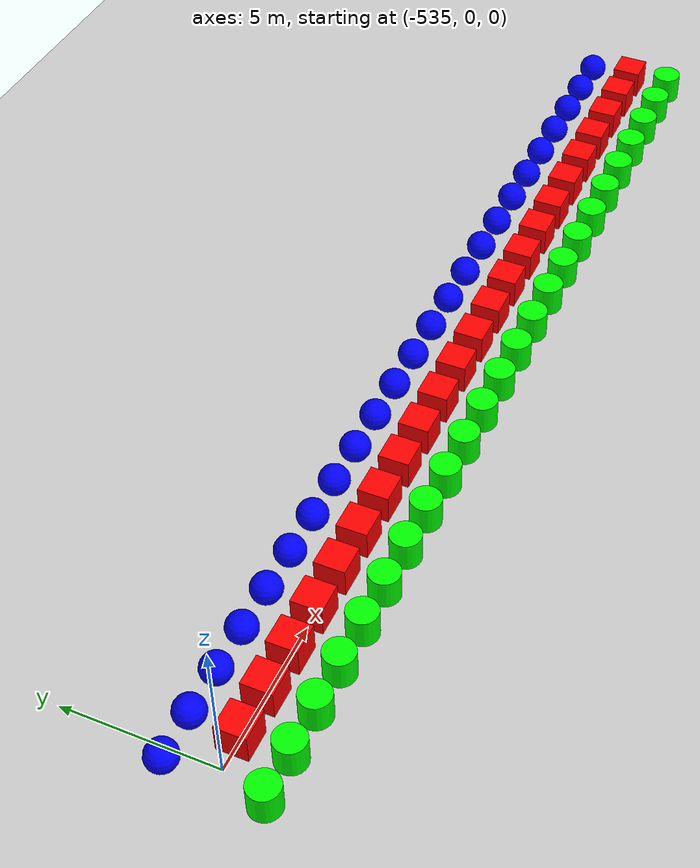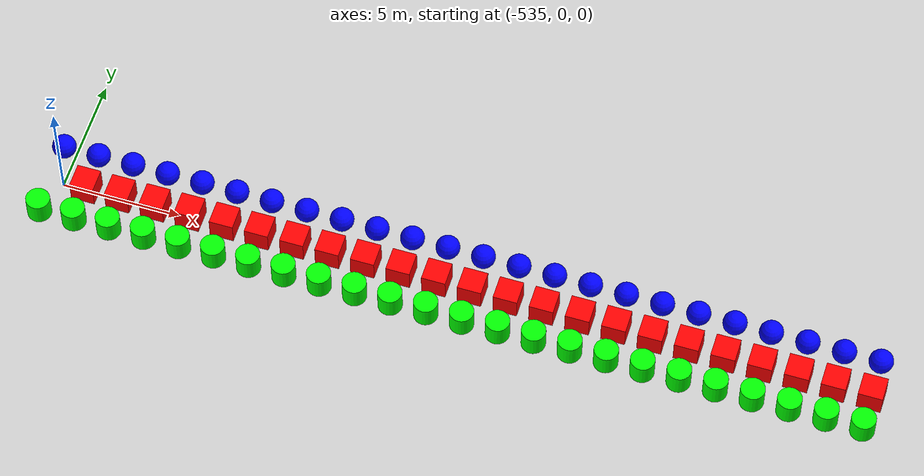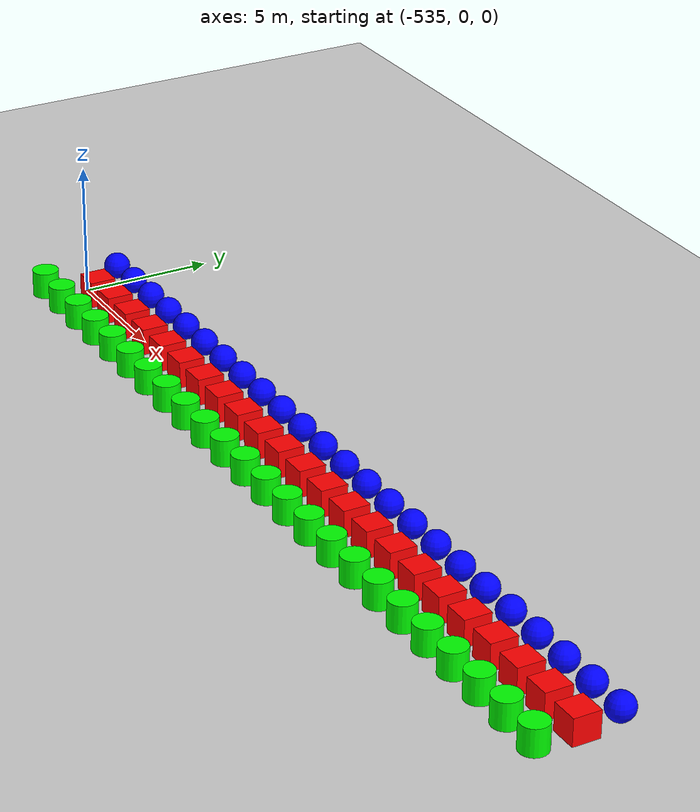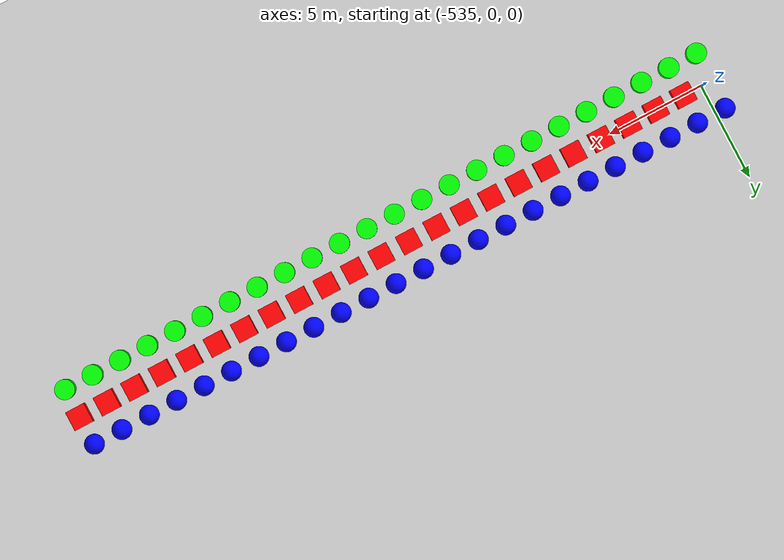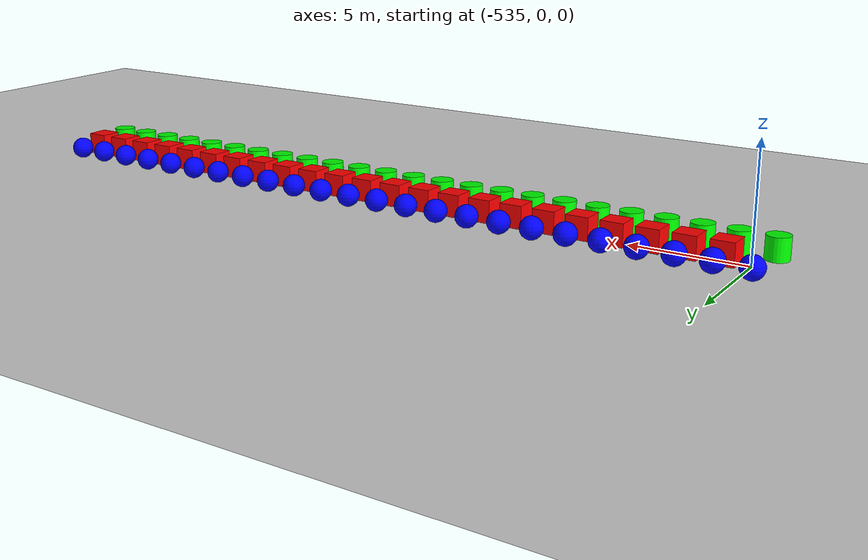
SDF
<sdf version="1.6">
 <world name="shapes">
  <model name="ground_plane">
   <static>true</static>
   <link name="link">
    <collision name="collision">
     <geometry><plane><normal>0 0 1</normal><size>100 100</size></plane></geometry>
    </collision>
    <visual name="visual">
     <geometry><plane><normal>0 0 1</normal><size>100 100</size></plane></geometry>
     <material>
      <ambient>0.8 0.8 0.8 1</ambient>
      <diffuse>0.8 0.8 0.8 1</diffuse>
      <specular>0.8 0.8 0.8 1</specular>
     </material>
    </visual>
   </link>
  </model>
  <model name="cylinder_143">
   <pose>-535.5 -1.5 0.5 0 0 0</pose>
   <link name="cylinder_link">
    <inertial>
     <inertia><ixx>2</ixx><ixy>0</ixy><ixz>0</ixz><iyy>2</iyy><iyz>0</iyz><izz>2</izz></inertia>
     <mass>2.0</mass>
    </inertial>
    <collision name="cylinder_collision">
     <geometry><cylinder><radius>0.5</radius><length>1.0</length></cylinder></geometry>
    </collision>
    <visual name="cylinder_visual">
     <geometry><cylinder><radius>0.5</radius><length>1.0</length></cylinder></geometry>
     <material><ambient>0 1 0 1</ambient><diffuse>0 1 0 1</diffuse><specular>0 1 0 1</specular></material>
    </visual>
   </link>
  </model>
  <model name="sphere_143">
   <pose>-535.5 1.5 0.5 0 0 0</pose>
   <link name="sphere_link">
    <inertial>
     <inertia><ixx>3</ixx><ixy>0</ixy><ixz>0</ixz><iyy>3</iyy><iyz>0</iyz><izz>3</izz></inertia>
     <mass>3.0</mass>
    </inertial>
    <collision name="sphere_collision"><geometry><sphere><radius>0.5</radius></sphere></geometry></collision>
    <visual name="sphere_visual">
     <geometry><sphere><radius>0.5</radius></sphere></geometry>
     <material><ambient>0 0 1 1</ambient><diffuse>0 0 1 1</diffuse><specular>0 0 1 1</specular></material>
    </visual>
   </link>
  </model>
  <model name="box_144">
   <pose>-534.0 0 0.5 0 0 0</pose>
   <link name="box_link">
    <inertial>
     <inertia><ixx>1</ixx><ixy>0</ixy><ixz>0</ixz><iyy>1</iyy><iyz>0</iyz><izz>1</izz></inertia>
     <mass>1.0</mass>
    </inertial>
    <collision name="box_collision"><geometry><box><size>1 1 1</size></box></geometry></collision>
    <visual name="box_visual">
     <geometry><box><size>1 1 1</size></box></geometry>
     <material><ambient>1 0 0 1</ambient><diffuse>1 0 0 1</diffuse><specular>1 0 0 1</specular></material>
    </visual>
   </link>
  </model>
  <model name="cylinder_144">
   <pose>-534.0 -1.5 0.5 0 0 0</pose>
   <link name="cylinder_link">
    <inertial>
     <inertia><ixx>2</ixx><ixy>0</ixy><ixz>0</ixz><iyy>2</iyy><iyz>0</iyz><izz>2</izz></inertia>
     <mass>2.0</mass>
    </inertial>
    <collision name="cylinder_collision">
     <geometry><cylinder><radius>0.5</radius><length>1.0</length></cylinder></geometry>
    </collision>
    <visual name="cylinder_visual">
     <geometry><cylinder><radius>0.5</radius><length>1.0</length></cylinder></geometry>
     <material><ambient>0 1 0 1</ambient><diffuse>0 1 0 1</diffuse><specular>0 1 0 1</specular></material>
    </visual>
   </link>
  </model>
  <model name="sphere_144">
   <pose>-534.0 1.5 0.5 0 0 0</pose>
   <link name="sphere_link">
    <inertial>
     <inertia><ixx>3</ixx><ixy>0</ixy><ixz>0</ixz><iyy>3</iyy><iyz>0</iyz><izz>3</izz></inertia>
     <mass>3.0</mass>
    </inertial>
    <collision name="sphere_collision"><geometry><sphere><radius>0.5</radius></sphere></geometry></collision>
    <visual name="sphere_visual">
     <geometry><sphere><radius>0.5</radius></sphere></geometry>
     <material><ambient>0 0 1 1</ambient><diffuse>0 0 1 1</diffuse><specular>0 0 1 1</specular></material>
    </visual>
   </link>
  </model>
  <model name="box_145">
   <pose>-532.5 0 0.5 0 0 0</pose>
   <link name="box_link">
    <inertial>
     <inertia><ixx>1</ixx><ixy>0</ixy><ixz>0</ixz><iyy>1</iyy><iyz>0</iyz><izz>1</izz></inertia>
     <mass>1.0</mass>
    </inertial>
    <collision name="box_collision"><geometry><box><size>1 1 1</size></box></geometry></collision>
    <visual name="box_visual">
     <geometry><box><size>1 1 1</size></box></geometry>
     <material><ambient>1 0 0 1</ambient><diffuse>1 0 0 1</diffuse><specular>1 0 0 1</specular></material>
    </visual>
   </link>
  </model>
  <model name="cylinder_145">
   <pose>-532.5 -1.5 0.5 0 0 0</pose>
   <link name="cylinder_link">
    <inertial>
     <inertia><ixx>2</ixx><ixy>0</ixy><ixz>0</ixz><iyy>2</iyy><iyz>0</iyz><izz>2</izz></inertia>
     <mass>2.0</mass>
    </inertial>
    <collision name="cylinder_collision">
     <geometry><cylinder><radius>0.5</radius><length>1.0</length></cylinder></geometry>
    </collision>
    <visual name="cylinder_visual">
     <geometry><cylinder><radius>0.5</radius><length>1.0</length></cylinder></geometry>
     <material><ambient>0 1 0 1</ambient><diffuse>0 1 0 1</diffuse><specular>0 1 0 1</specular></material>
    </visual>
   </link>
  </model>
  <model name="sphere_145">
   <pose>-532.5 1.5 0.5 0 0 0</pose>
   <link name="sphere_link">
    <inertial>
     <inertia><ixx>3</ixx><ixy>0</ixy><ixz>0</ixz><iyy>3</iyy><iyz>0</iyz><izz>3</izz></inertia>
     <mass>3.0</mass>
    </inertial>
    <collision name="sphere_collision"><geometry><sphere><radius>0.5</radius></sphere></geometry></collision>
    <visual name="sphere_visual">
     <geometry><sphere><radius>0.5</radius></sphere></geometry>
     <material><ambient>0 0 1 1</ambient><diffuse>0 0 1 1</diffuse><specular>0 0 1 1</specular></material>
    </visual>
   </link>
  </model>
  <model name="box_146">
   <pose>-531.0 0 0.5 0 0 0</pose>
   <link name="box_link">
    <inertial>
     <inertia><ixx>1</ixx><ixy>0</ixy><ixz>0</ixz><iyy>1</iyy><iyz>0</iyz><izz>1</izz></inertia>
     <mass>1.0</mass>
    </inertial>
    <collision name="box_collision"><geometry><box><size>1 1 1</size></box></geometry></collision>
    <visual name="box_visual">
     <geometry><box><size>1 1 1</size></box></geometry>
     <material><ambient>1 0 0 1</ambient><diffuse>1 0 0 1</diffuse><specular>1 0 0 1</specular></material>
    </visual>
   </link>
  </model>
  <model name="cylinder_146">
   <pose>-531.0 -1.5 0.5 0 0 0</pose>
   <link name="cylinder_link">
    <inertial>
     <inertia><ixx>2</ixx><ixy>0</ixy><ixz>0</ixz><iyy>2</iyy><iyz>0</iyz><izz>2</izz></inertia>
     <mass>2.0</mass>
    </inertial>
    <collision name="cylinder_collision">
     <geometry><cylinder><radius>0.5</radius><length>1.0</length></cylinder></geometry>
    </collision>
    <visual name="cylinder_visual">
     <geometry><cylinder><radius>0.5</radius><length>1.0</length></cylinder></geometry>
     <material><ambient>0 1 0 1</ambient><diffuse>0 1 0 1</diffuse><specular>0 1 0 1</specular></material>
    </visual>
   </link>
  </model>
  <model name="sphere_146">
   <pose>-531.0 1.5 0.5 0 0 0</pose>
   <link name="sphere_link">
    <inertial>
     <inertia><ixx>3</ixx><ixy>0</ixy><ixz>0</ixz><iyy>3</iyy><iyz>0</iyz><izz>3</izz></inertia>
     <mass>3.0</mass>
    </inertial>
    <collision name="sphere_collision"><geometry><sphere><radius>0.5</radius></sphere></geometry></collision>
    <visual name="sphere_visual">
     <geometry><sphere><radius>0.5</radius></sphere></geometry>
     <material><ambient>0 0 1 1</ambient><diffuse>0 0 1 1</diffuse><specular>0 0 1 1</specular></material>
    </visual>
   </link>
  </model>
  <model name="box_147">
   <pose>-529.5 0 0.5 0 0 0</pose>
   <link name="box_link">
    <inertial>
     <inertia><ixx>1</ixx><ixy>0</ixy><ixz>0</ixz><iyy>1</iyy><iyz>0</iyz><izz>1</izz></inertia>
     <mass>1.0</mass>
    </inertial>
    <collision name="box_collision"><geometry><box><size>1 1 1</size></box></geometry></collision>
    <visual name="box_visual">
     <geometry><box><size>1 1 1</size></box></geometry>
     <material><ambient>1 0 0 1</ambient><diffuse>1 0 0 1</diffuse><specular>1 0 0 1</specular></material>
    </visual>
   </link>
  </model>
  <model name="cylinder_147">
   <pose>-529.5 -1.5 0.5 0 0 0</pose>
   <link name="cylinder_link">
    <inertial>
     <inertia><ixx>2</ixx><ixy>0</ixy><ixz>0</ixz><iyy>2</iyy><iyz>0</iyz><izz>2</izz></inertia>
     <mass>2.0</mass>
    </inertial>
    <collision name="cylinder_collision">
     <geometry><cylinder><radius>0.5</radius><length>1.0</length></cylinder></geometry>
    </collision>
    <visual name="cylinder_visual">
     <geometry><cylinder><radius>0.5</radius><length>1.0</length></cylinder></geometry>
     <material><ambient>0 1 0 1</ambient><diffuse>0 1 0 1</diffuse><specular>0 1 0 1</specular></material>
    </visual>
   </link>
  </model>
  <model name="sphere_147">
   <pose>-529.5 1.5 0.5 0 0 0</pose>
   <link name="sphere_link">
    <inertial>
     <inertia><ixx>3</ixx><ixy>0</ixy><ixz>0</ixz><iyy>3</iyy><iyz>0</iyz><izz>3</izz></inertia>
     <mass>3.0</mass>
    </inertial>
    <collision name="sphere_collision"><geometry><sphere><radius>0.5</radius></sphere></geometry></collision>
    <visual name="sphere_visual">
     <geometry><sphere><radius>0.5</radius></sphere></geometry>
     <material><ambient>0 0 1 1</ambient><diffuse>0 0 1 1</diffuse><specular>0 0 1 1</specular></material>
    </visual>
   </link>
  </model>
  <model name="box_148">
   <pose>-528.0 0 0.5 0 0 0</pose>
   <link name="box_link">
    <inertial>
     <inertia><ixx>1</ixx><ixy>0</ixy><ixz>0</ixz><iyy>1</iyy><iyz>0</iyz><izz>1</izz></inertia>
     <mass>1.0</mass>
    </inertial>
    <collision name="box_collision"><geometry><box><size>1 1 1</size></box></geometry></collision>
    <visual name="box_visual">
     <geometry><box><size>1 1 1</size></box></geometry>
     <material><ambient>1 0 0 1</ambient><diffuse>1 0 0 1</diffuse><specular>1 0 0 1</specular></material>
    </visual>
   </link>
  </model>
  <model name="cylinder_148">
   <pose>-528.0 -1.5 0.5 0 0 0</pose>
   <link name="cylinder_link">
    <inertial>
     <inertia><ixx>2</ixx><ixy>0</ixy><ixz>0</ixz><iyy>2</iyy><iyz>0</iyz><izz>2</izz></inertia>
     <mass>2.0</mass>
    </inertial>
    <collision name="cylinder_collision">
     <geometry><cylinder><radius>0.5</radius><length>1.0</length></cylinder></geometry>
    </collision>
    <visual name="cylinder_visual">
     <geometry><cylinder><radius>0.5</radius><length>1.0</length></cylinder></geometry>
     <material><ambient>0 1 0 1</ambient><diffuse>0 1 0 1</diffuse><specular>0 1 0 1</specular></material>
    </visual>
   </link>
  </model>
  <model name="sphere_148">
   <pose>-528.0 1.5 0.5 0 0 0</pose>
   <link name="sphere_link">
    <inertial>
     <inertia><ixx>3</ixx><ixy>0</ixy><ixz>0</ixz><iyy>3</iyy><iyz>0</iyz><izz>3</izz></inertia>
     <mass>3.0</mass>
    </inertial>
    <collision name="sphere_collision"><geometry><sphere><radius>0.5</radius></sphere></geometry></collision>
    <visual name="sphere_visual">
     <geometry><sphere><radius>0.5</radius></sphere></geometry>
     <material><ambient>0 0 1 1</ambient><diffuse>0 0 1 1</diffuse><specular>0 0 1 1</specular></material>
    </visual>
   </link>
  </model>
  <model name="box_149">
   <pose>-526.5 0 0.5 0 0 0</pose>
   <link name="box_link">
    <inertial>
     <inertia><ixx>1</ixx><ixy>0</ixy><ixz>0</ixz><iyy>1</iyy><iyz>0</iyz><izz>1</izz></inertia>
     <mass>1.0</mass>
    </inertial>
    <collision name="box_collision"><geometry><box><size>1 1 1</size></box></geometry></collision>
    <visual name="box_visual">
     <geometry><box><size>1 1 1</size></box></geometry>
     <material><ambient>1 0 0 1</ambient><diffuse>1 0 0 1</diffuse><specular>1 0 0 1</specular></material>
    </visual>
   </link>
  </model>
  <model name="cylinder_149">
   <pose>-526.5 -1.5 0.5 0 0 0</pose>
   <link name="cylinder_link">
    <inertial>
     <inertia><ixx>2</ixx><ixy>0</ixy><ixz>0</ixz><iyy>2</iyy><iyz>0</iyz><izz>2</izz></inertia>
     <mass>2.0</mass>
    </inertial>
    <collision name="cylinder_collision">
     <geometry><cylinder><radius>0.5</radius><length>1.0</length></cylinder></geometry>
    </collision>
    <visual name="cylinder_visual">
     <geometry><cylinder><radius>0.5</radius><length>1.0</length></cylinder></geometry>
     <material><ambient>0 1 0 1</ambient><diffuse>0 1 0 1</diffuse><specular>0 1 0 1</specular></material>
    </visual>
   </link>
  </model>
  <model name="sphere_149">
   <pose>-526.5 1.5 0.5 0 0 0</pose>
   <link name="sphere_link">
    <inertial>
     <inertia><ixx>3</ixx><ixy>0</ixy><ixz>0</ixz><iyy>3</iyy><iyz>0</iyz><izz>3</izz></inertia>
     <mass>3.0</mass>
    </inertial>
    <collision name="sphere_collision"><geometry><sphere><radius>0.5</radius></sphere></geometry></collision>
    <visual name="sphere_visual">
     <geometry><sphere><radius>0.5</radius></sphere></geometry>
     <material><ambient>0 0 1 1</ambient><diffuse>0 0 1 1</diffuse><specular>0 0 1 1</specular></material>
    </visual>
   </link>
  </model>
  <model name="box_150">
   <pose>-525.0 0 0.5 0 0 0</pose>
   <link name="box_link">
    <inertial>
     <inertia><ixx>1</ixx><ixy>0</ixy><ixz>0</ixz><iyy>1</iyy><iyz>0</iyz><izz>1</izz></inertia>
     <mass>1.0</mass>
    </inertial>
    <collision name="box_collision"><geometry><box><size>1 1 1</size></box></geometry></collision>
    <visual name="box_visual">
     <geometry><box><size>1 1 1</size></box></geometry>
     <material><ambient>1 0 0 1</ambient><diffuse>1 0 0 1</diffuse><specular>1 0 0 1</specular></material>
    </visual>
   </link>
  </model>
  <model name="cylinder_150">
   <pose>-525.0 -1.5 0.5 0 0 0</pose>
   <link name="cylinder_link">
    <inertial>
     <inertia><ixx>2</ixx><ixy>0</ixy><ixz>0</ixz><iyy>2</iyy><iyz>0</iyz><izz>2</izz></inertia>
     <mass>2.0</mass>
    </inertial>
    <collision name="cylinder_collision">
     <geometry><cylinder><radius>0.5</radius><length>1.0</length></cylinder></geometry>
    </collision>
    <visual name="cylinder_visual">
     <geometry><cylinder><radius>0.5</radius><length>1.0</length></cylinder></geometry>
     <material><ambient>0 1 0 1</ambient><diffuse>0 1 0 1</diffuse><specular>0 1 0 1</specular></material>
    </visual>
   </link>
  </model>
  <model name="sphere_150">
   <pose>-525.0 1.5 0.5 0 0 0</pose>
   <link name="sphere_link">
    <inertial>
     <inertia><ixx>3</ixx><ixy>0</ixy><ixz>0</ixz><iyy>3</iyy><iyz>0</iyz><izz>3</izz></inertia>
     <mass>3.0</mass>
    </inertial>
    <collision name="sphere_collision"><geometry><sphere><radius>0.5</radius></sphere></geometry></collision>
    <visual name="sphere_visual">
     <geometry><sphere><radius>0.5</radius></sphere></geometry>
     <material><ambient>0 0 1 1</ambient><diffuse>0 0 1 1</diffuse><specular>0 0 1 1</specular></material>
    </visual>
   </link>
  </model>
  <model name="box_151">
   <pose>-523.5 0 0.5 0 0 0</pose>
   <link name="box_link">
    <inertial>
     <inertia><ixx>1</ixx><ixy>0</ixy><ixz>0</ixz><iyy>1</iyy><iyz>0</iyz><izz>1</izz></inertia>
     <mass>1.0</mass>
    </inertial>
    <collision name="box_collision"><geometry><box><size>1 1 1</size></box></geometry></collision>
    <visual name="box_visual">
     <geometry><box><size>1 1 1</size></box></geometry>
     <material><ambient>1 0 0 1</ambient><diffuse>1 0 0 1</diffuse><specular>1 0 0 1</specular></material>
    </visual>
   </link>
  </model>
  <model name="cylinder_151">
   <pose>-523.5 -1.5 0.5 0 0 0</pose>
   <link name="cylinder_link">
    <inertial>
     <inertia><ixx>2</ixx><ixy>0</ixy><ixz>0</ixz><iyy>2</iyy><iyz>0</iyz><izz>2</izz></inertia>
     <mass>2.0</mass>
    </inertial>
    <collision name="cylinder_collision">
     <geometry><cylinder><radius>0.5</radius><length>1.0</length></cylinder></geometry>
    </collision>
    <visual name="cylinder_visual">
     <geometry><cylinder><radius>0.5</radius><length>1.0</length></cylinder></geometry>
     <material><ambient>0 1 0 1</ambient><diffuse>0 1 0 1</diffuse><specular>0 1 0 1</specular></material>
    </visual>
   </link>
  </model>
  <model name="sphere_151">
   <pose>-523.5 1.5 0.5 0 0 0</pose>
   <link name="sphere_link">
    <inertial>
     <inertia><ixx>3</ixx><ixy>0</ixy><ixz>0</ixz><iyy>3</iyy><iyz>0</iyz><izz>3</izz></inertia>
     <mass>3.0</mass>
    </inertial>
    <collision name="sphere_collision"><geometry><sphere><radius>0.5</radius></sphere></geometry></collision>
    <visual name="sphere_visual">
     <geometry><sphere><radius>0.5</radius></sphere></geometry>
     <material><ambient>0 0 1 1</ambient><diffuse>0 0 1 1</diffuse><specular>0 0 1 1</specular></material>
    </visual>
   </link>
  </model>
  <model name="box_152">
   <pose>-522.0 0 0.5 0 0 0</pose>
   <link name="box_link">
    <inertial>
     <inertia><ixx>1</ixx><ixy>0</ixy><ixz>0</ixz><iyy>1</iyy><iyz>0</iyz><izz>1</izz></inertia>
     <mass>1.0</mass>
    </inertial>
    <collision name="box_collision"><geometry><box><size>1 1 1</size></box></geometry></collision>
    <visual name="box_visual">
     <geometry><box><size>1 1 1</size></box></geometry>
     <material><ambient>1 0 0 1</ambient><diffuse>1 0 0 1</diffuse><specular>1 0 0 1</specular></material>
    </visual>
   </link>
  </model>
  <model name="cylinder_152">
   <pose>-522.0 -1.5 0.5 0 0 0</pose>
   <link name="cylinder_link">
    <inertial>
     <inertia><ixx>2</ixx><ixy>0</ixy><ixz>0</ixz><iyy>2</iyy><iyz>0</iyz><izz>2</izz></inertia>
     <mass>2.0</mass>
    </inertial>
    <collision name="cylinder_collision">
     <geometry><cylinder><radius>0.5</radius><length>1.0</length></cylinder></geometry>
    </collision>
    <visual name="cylinder_visual">
     <geometry><cylinder><radius>0.5</radius><length>1.0</length></cylinder></geometry>
     <material><ambient>0 1 0 1</ambient><diffuse>0 1 0 1</diffuse><specular>0 1 0 1</specular></material>
    </visual>
   </link>
  </model>
  <model name="sphere_152">
   <pose>-522.0 1.5 0.5 0 0 0</pose>
   <link name="sphere_link">
    <inertial>
     <inertia><ixx>3</ixx><ixy>0</ixy><ixz>0</ixz><iyy>3</iyy><iyz>0</iyz><izz>3</izz></inertia>
     <mass>3.0</mass>
    </inertial>
    <collision name="sphere_collision"><geometry><sphere><radius>0.5</radius></sphere></geometry></collision>
    <visual name="sphere_visual">
     <geometry><sphere><radius>0.5</radius></sphere></geometry>
     <material><ambient>0 0 1 1</ambient><diffuse>0 0 1 1</diffuse><specular>0 0 1 1</specular></material>
    </visual>
   </link>
  </model>
  <model name="box_153">
   <pose>-520.5 0 0.5 0 0 0</pose>
   <link name="box_link">
    <inertial>
     <inertia><ixx>1</ixx><ixy>0</ixy><ixz>0</ixz><iyy>1</iyy><iyz>0</iyz><izz>1</izz></inertia>
     <mass>1.0</mass>
    </inertial>
    <collision name="box_collision"><geometry><box><size>1 1 1</size></box></geometry></collision>
    <visual name="box_visual">
     <geometry><box><size>1 1 1</size></box></geometry>
     <material><ambient>1 0 0 1</ambient><diffuse>1 0 0 1</diffuse><specular>1 0 0 1</specular></material>
    </visual>
   </link>
  </model>
  <model name="cylinder_153">
   <pose>-520.5 -1.5 0.5 0 0 0</pose>
   <link name="cylinder_link">
    <inertial>
     <inertia><ixx>2</ixx><ixy>0</ixy><ixz>0</ixz><iyy>2</iyy><iyz>0</iyz><izz>2</izz></inertia>
     <mass>2.0</mass>
    </inertial>
    <collision name="cylinder_collision">
     <geometry><cylinder><radius>0.5</radius><length>1.0</length></cylinder></geometry>
    </collision>
    <visual name="cylinder_visual">
     <geometry><cylinder><radius>0.5</radius><length>1.0</length></cylinder></geometry>
     <material><ambient>0 1 0 1</ambient><diffuse>0 1 0 1</diffuse><specular>0 1 0 1</specular></material>
    </visual>
   </link>
  </model>
  <model name="sphere_153">
   <pose>-520.5 1.5 0.5 0 0 0</pose>
   <link name="sphere_link">
    <inertial>
     <inertia><ixx>3</ixx><ixy>0</ixy><ixz>0</ixz><iyy>3</iyy><iyz>0</iyz><izz>3</izz></inertia>
     <mass>3.0</mass>
    </inertial>
    <collision name="sphere_collision"><geometry><sphere><radius>0.5</radius></sphere></geometry></collision>
    <visual name="sphere_visual">
     <geometry><sphere><radius>0.5</radius></sphere></geometry>
     <material><ambient>0 0 1 1</ambient><diffuse>0 0 1 1</diffuse><specular>0 0 1 1</specular></material>
    </visual>
   </link>
  </model>
  <model name="box_154">
   <pose>-519.0 0 0.5 0 0 0</pose>
   <link name="box_link">
    <inertial>
     <inertia><ixx>1</ixx><ixy>0</ixy><ixz>0</ixz><iyy>1</iyy><iyz>0</iyz><izz>1</izz></inertia>
     <mass>1.0</mass>
    </inertial>
    <collision name="box_collision"><geometry><box><size>1 1 1</size></box></geometry></collision>
    <visual name="box_visual">
     <geometry><box><size>1 1 1</size></box></geometry>
     <material><ambient>1 0 0 1</ambient><diffuse>1 0 0 1</diffuse><specular>1 0 0 1</specular></material>
    </visual>
   </link>
  </model>
  <model name="cylinder_154">
   <pose>-519.0 -1.5 0.5 0 0 0</pose>
   <link name="cylinder_link">
    <inertial>
     <inertia><ixx>2</ixx><ixy>0</ixy><ixz>0</ixz><iyy>2</iyy><iyz>0</iyz><izz>2</izz></inertia>
     <mass>2.0</mass>
    </inertial>
    <collision name="cylinder_collision">
     <geometry><cylinder><radius>0.5</radius><length>1.0</length></cylinder></geometry>
    </collision>
    <visual name="cylinder_visual">
     <geometry><cylinder><radius>0.5</radius><length>1.0</length></cylinder></geometry>
     <material><ambient>0 1 0 1</ambient><diffuse>0 1 0 1</diffuse><specular>0 1 0 1</specular></material>
    </visual>
   </link>
  </model>
  <model name="sphere_154">
   <pose>-519.0 1.5 0.5 0 0 0</pose>
   <link name="sphere_link">
    <inertial>
     <inertia><ixx>3</ixx><ixy>0</ixy><ixz>0</ixz><iyy>3</iyy><iyz>0</iyz><izz>3</izz></inertia>
     <mass>3.0</mass>
    </inertial>
    <collision name="sphere_collision"><geometry><sphere><radius>0.5</radius></sphere></geometry></collision>
    <visual name="sphere_visual">
     <geometry><sphere><radius>0.5</radius></sphere></geometry>
     <material><ambient>0 0 1 1</ambient><diffuse>0 0 1 1</diffuse><specular>0 0 1 1</specular></material>
    </visual>
   </link>
  </model>
  <model name="box_155">
   <pose>-517.5 0 0.5 0 0 0</pose>
   <link name="box_link">
    <inertial>
     <inertia><ixx>1</ixx><ixy>0</ixy><ixz>0</ixz><iyy>1</iyy><iyz>0</iyz><izz>1</izz></inertia>
     <mass>1.0</mass>
    </inertial>
    <collision name="box_collision"><geometry><box><size>1 1 1</size></box></geometry></collision>
    <visual name="box_visual">
     <geometry><box><size>1 1 1</size></box></geometry>
     <material><ambient>1 0 0 1</ambient><diffuse>1 0 0 1</diffuse><specular>1 0 0 1</specular></material>
    </visual>
   </link>
  </model>
  <model name="cylinder_155">
   <pose>-517.5 -1.5 0.5 0 0 0</pose>
   <link name="cylinder_link">
    <inertial>
     <inertia><ixx>2</ixx><ixy>0</ixy><ixz>0</ixz><iyy>2</iyy><iyz>0</iyz><izz>2</izz></inertia>
     <mass>2.0</mass>
    </inertial>
    <collision name="cylinder_collision">
     <geometry><cylinder><radius>0.5</radius><length>1.0</length></cylinder></geometry>
    </collision>
    <visual name="cylinder_visual">
     <geometry><cylinder><radius>0.5</radius><length>1.0</length></cylinder></geometry>
     <material><ambient>0 1 0 1</ambient><diffuse>0 1 0 1</diffuse><specular>0 1 0 1</specular></material>
    </visual>
   </link>
  </model>
  <model name="sphere_155">
   <pose>-517.5 1.5 0.5 0 0 0</pose>
   <link name="sphere_link">
    <inertial>
     <inertia><ixx>3</ixx><ixy>0</ixy><ixz>0</ixz><iyy>3</iyy><iyz>0</iyz><izz>3</izz></inertia>
     <mass>3.0</mass>
    </inertial>
    <collision name="sphere_collision"><geometry><sphere><radius>0.5</radius></sphere></geometry></collision>
    <visual name="sphere_visual">
     <geometry><sphere><radius>0.5</radius></sphere></geometry>
     <material><ambient>0 0 1 1</ambient><diffuse>0 0 1 1</diffuse><specular>0 0 1 1</specular></material>
    </visual>
   </link>
  </model>
  <model name="box_156">
   <pose>-516.0 0 0.5 0 0 0</pose>
   <link name="box_link">
    <inertial>
     <inertia><ixx>1</ixx><ixy>0</ixy><ixz>0</ixz><iyy>1</iyy><iyz>0</iyz><izz>1</izz></inertia>
     <mass>1.0</mass>
    </inertial>
    <collision name="box_collision"><geometry><box><size>1 1 1</size></box></geometry></collision>
    <visual name="box_visual">
     <geometry><box><size>1 1 1</size></box></geometry>
     <material><ambient>1 0 0 1</ambient><diffuse>1 0 0 1</diffuse><specular>1 0 0 1</specular></material>
    </visual>
   </link>
  </model>
  <model name="cylinder_156">
   <pose>-516.0 -1.5 0.5 0 0 0</pose>
   <link name="cylinder_link">
    <inertial>
     <inertia><ixx>2</ixx><ixy>0</ixy><ixz>0</ixz><iyy>2</iyy><iyz>0</iyz><izz>2</izz></inertia>
     <mass>2.0</mass>
    </inertial>
    <collision name="cylinder_collision">
     <geometry><cylinder><radius>0.5</radius><length>1.0</length></cylinder></geometry>
    </collision>
    <visual name="cylinder_visual">
     <geometry><cylinder><radius>0.5</radius><length>1.0</length></cylinder></geometry>
     <material><ambient>0 1 0 1</ambient><diffuse>0 1 0 1</diffuse><specular>0 1 0 1</specular></material>
    </visual>
   </link>
  </model>
  <model name="sphere_156">
   <pose>-516.0 1.5 0.5 0 0 0</pose>
   <link name="sphere_link">
    <inertial>
     <inertia><ixx>3</ixx><ixy>0</ixy><ixz>0</ixz><iyy>3</iyy><iyz>0</iyz><izz>3</izz></inertia>
     <mass>3.0</mass>
    </inertial>
    <collision name="sphere_collision"><geometry><sphere><radius>0.5</radius></sphere></geometry></collision>
    <visual name="sphere_visual">
     <geometry><sphere><radius>0.5</radius></sphere></geometry>
     <material><ambient>0 0 1 1</ambient><diffuse>0 0 1 1</diffuse><specular>0 0 1 1</specular></material>
    </visual>
   </link>
  </model>
  <model name="box_157">
   <pose>-514.5 0 0.5 0 0 0</pose>
   <link name="box_link">
    <inertial>
     <inertia><ixx>1</ixx><ixy>0</ixy><ixz>0</ixz><iyy>1</iyy><iyz>0</iyz><izz>1</izz></inertia>
     <mass>1.0</mass>
    </inertial>
    <collision name="box_collision"><geometry><box><size>1 1 1</size></box></geometry></collision>
    <visual name="box_visual">
     <geometry><box><size>1 1 1</size></box></geometry>
     <material><ambient>1 0 0 1</ambient><diffuse>1 0 0 1</diffuse><specular>1 0 0 1</specular></material>
    </visual>
   </link>
  </model>
  <model name="cylinder_157">
   <pose>-514.5 -1.5 0.5 0 0 0</pose>
   <link name="cylinder_link">
    <inertial>
     <inertia><ixx>2</ixx><ixy>0</ixy><ixz>0</ixz><iyy>2</iyy><iyz>0</iyz><izz>2</izz></inertia>
     <mass>2.0</mass>
    </inertial>
    <collision name="cylinder_collision">
     <geometry><cylinder><radius>0.5</radius><length>1.0</length></cylinder></geometry>
    </collision>
    <visual name="cylinder_visual">
     <geometry><cylinder><radius>0.5</radius><length>1.0</length></cylinder></geometry>
     <material><ambient>0 1 0 1</ambient><diffuse>0 1 0 1</diffuse><specular>0 1 0 1</specular></material>
    </visual>
   </link>
  </model>
  <model name="sphere_157">
   <pose>-514.5 1.5 0.5 0 0 0</pose>
   <link name="sphere_link">
    <inertial>
     <inertia><ixx>3</ixx><ixy>0</ixy><ixz>0</ixz><iyy>3</iyy><iyz>0</iyz><izz>3</izz></inertia>
     <mass>3.0</mass>
    </inertial>
    <collision name="sphere_collision"><geometry><sphere><radius>0.5</radius></sphere></geometry></collision>
    <visual name="sphere_visual">
     <geometry><sphere><radius>0.5</radius></sphere></geometry>
     <material><ambient>0 0 1 1</ambient><diffuse>0 0 1 1</diffuse><specular>0 0 1 1</specular></material>
    </visual>
   </link>
  </model>
  <model name="box_158">
   <pose>-513.0 0 0.5 0 0 0</pose>
   <link name="box_link">
    <inertial>
     <inertia><ixx>1</ixx><ixy>0</ixy><ixz>0</ixz><iyy>1</iyy><iyz>0</iyz><izz>1</izz></inertia>
     <mass>1.0</mass>
    </inertial>
    <collision name="box_collision"><geometry><box><size>1 1 1</size></box></geometry></collision>
    <visual name="box_visual">
     <geometry><box><size>1 1 1</size></box></geometry>
     <material><ambient>1 0 0 1</ambient><diffuse>1 0 0 1</diffuse><specular>1 0 0 1</specular></material>
    </visual>
   </link>
  </model>
  <model name="cylinder_158">
   <pose>-513.0 -1.5 0.5 0 0 0</pose>
   <link name="cylinder_link">
    <inertial>
     <inertia><ixx>2</ixx><ixy>0</ixy><ixz>0</ixz><iyy>2</iyy><iyz>0</iyz><izz>2</izz></inertia>
     <mass>2.0</mass>
    </inertial>
    <collision name="cylinder_collision">
     <geometry><cylinder><radius>0.5</radius><length>1.0</length></cylinder></geometry>
    </collision>
    <visual name="cylinder_visual">
     <geometry><cylinder><radius>0.5</radius><length>1.0</length></cylinder></geometry>
     <material><ambient>0 1 0 1</ambient><diffuse>0 1 0 1</diffuse><specular>0 1 0 1</specular></material>
    </visual>
   </link>
  </model>
  <model name="sphere_158">
   <pose>-513.0 1.5 0.5 0 0 0</pose>
   <link name="sphere_link">
    <inertial>
     <inertia><ixx>3</ixx><ixy>0</ixy><ixz>0</ixz><iyy>3</iyy><iyz>0</iyz><izz>3</izz></inertia>
     <mass>3.0</mass>
    </inertial>
    <collision name="sphere_collision"><geometry><sphere><radius>0.5</radius></sphere></geometry></collision>
    <visual name="sphere_visual">
     <geometry><sphere><radius>0.5</radius></sphere></geometry>
     <material><ambient>0 0 1 1</ambient><diffuse>0 0 1 1</diffuse><specular>0 0 1 1</specular></material>
    </visual>
   </link>
  </model>
  <model name="box_159">
   <pose>-511.5 0 0.5 0 0 0</pose>
   <link name="box_link">
    <inertial>
     <inertia><ixx>1</ixx><ixy>0</ixy><ixz>0</ixz><iyy>1</iyy><iyz>0</iyz><izz>1</izz></inertia>
     <mass>1.0</mass>
    </inertial>
    <collision name="box_collision"><geometry><box><size>1 1 1</size></box></geometry></collision>
    <visual name="box_visual">
     <geometry><box><size>1 1 1</size></box></geometry>
     <material><ambient>1 0 0 1</ambient><diffuse>1 0 0 1</diffuse><specular>1 0 0 1</specular></material>
    </visual>
   </link>
  </model>
  <model name="cylinder_159">
   <pose>-511.5 -1.5 0.5 0 0 0</pose>
   <link name="cylinder_link">
    <inertial>
     <inertia><ixx>2</ixx><ixy>0</ixy><ixz>0</ixz><iyy>2</iyy><iyz>0</iyz><izz>2</izz></inertia>
     <mass>2.0</mass>
    </inertial>
    <collision name="cylinder_collision">
     <geometry><cylinder><radius>0.5</radius><length>1.0</length></cylinder></geometry>
    </collision>
    <visual name="cylinder_visual">
     <geometry><cylinder><radius>0.5</radius><length>1.0</length></cylinder></geometry>
     <material><ambient>0 1 0 1</ambient><diffuse>0 1 0 1</diffuse><specular>0 1 0 1</specular></material>
    </visual>
   </link>
  </model>
  <model name="sphere_159">
   <pose>-511.5 1.5 0.5 0 0 0</pose>
   <link name="sphere_link">
    <inertial>
     <inertia><ixx>3</ixx><ixy>0</ixy><ixz>0</ixz><iyy>3</iyy><iyz>0</iyz><izz>3</izz></inertia>
     <mass>3.0</mass>
    </inertial>
    <collision name="sphere_collision"><geometry><sphere><radius>0.5</radius></sphere></geometry></collision>
    <visual name="sphere_visual">
     <geometry><sphere><radius>0.5</radius></sphere></geometry>
     <material><ambient>0 0 1 1</ambient><diffuse>0 0 1 1</diffuse><specular>0 0 1 1</specular></material>
    </visual>
   </link>
  </model>
  <model name="box_160">
   <pose>-510.0 0 0.5 0 0 0</pose>
   <link name="box_link">
    <inertial>
     <inertia><ixx>1</ixx><ixy>0</ixy><ixz>0</ixz><iyy>1</iyy><iyz>0</iyz><izz>1</izz></inertia>
     <mass>1.0</mass>
    </inertial>
    <collision name="box_collision"><geometry><box><size>1 1 1</size></box></geometry></collision>
    <visual name="box_visual">
     <geometry><box><size>1 1 1</size></box></geometry>
     <material><ambient>1 0 0 1</ambient><diffuse>1 0 0 1</diffuse><specular>1 0 0 1</specular></material>
    </visual>
   </link>
  </model>
  <model name="cylinder_160">
   <pose>-510.0 -1.5 0.5 0 0 0</pose>
   <link name="cylinder_link">
    <inertial>
     <inertia><ixx>2</ixx><ixy>0</ixy><ixz>0</ixz><iyy>2</iyy><iyz>0</iyz><izz>2</izz></inertia>
     <mass>2.0</mass>
    </inertial>
    <collision name="cylinder_collision">
     <geometry><cylinder><radius>0.5</radius><length>1.0</length></cylinder></geometry>
    </collision>
    <visual name="cylinder_visual">
     <geometry><cylinder><radius>0.5</radius><length>1.0</length></cylinder></geometry>
     <material><ambient>0 1 0 1</ambient><diffuse>0 1 0 1</diffuse><specular>0 1 0 1</specular></material>
    </visual>
   </link>
  </model>
  <model name="sphere_160">
   <pose>-510.0 1.5 0.5 0 0 0</pose>
   <link name="sphere_link">
    <inertial>
     <inertia><ixx>3</ixx><ixy>0</ixy><ixz>0</ixz><iyy>3</iyy><iyz>0</iyz><izz>3</izz></inertia>
     <mass>3.0</mass>
    </inertial>
    <collision name="sphere_collision"><geometry><sphere><radius>0.5</radius></sphere></geometry></collision>
    <visual name="sphere_visual">
     <geometry><sphere><radius>0.5</radius></sphere></geometry>
     <material><ambient>0 0 1 1</ambient><diffuse>0 0 1 1</diffuse><specular>0 0 1 1</specular></material>
    </visual>
   </link>
  </model>
  <model name="box_161">
   <pose>-508.5 0 0.5 0 0 0</pose>
   <link name="box_link">
    <inertial>
     <inertia><ixx>1</ixx><ixy>0</ixy><ixz>0</ixz><iyy>1</iyy><iyz>0</iyz><izz>1</izz></inertia>
     <mass>1.0</mass>
    </inertial>
    <collision name="box_collision"><geometry><box><size>1 1 1</size></box></geometry></collision>
    <visual name="box_visual">
     <geometry><box><size>1 1 1</size></box></geometry>
     <material><ambient>1 0 0 1</ambient><diffuse>1 0 0 1</diffuse><specular>1 0 0 1</specular></material>
    </visual>
   </link>
  </model>
  <model name="cylinder_161">
   <pose>-508.5 -1.5 0.5 0 0 0</pose>
   <link name="cylinder_link">
    <inertial>
     <inertia><ixx>2</ixx><ixy>0</ixy><ixz>0</ixz><iyy>2</iyy><iyz>0</iyz><izz>2</izz></inertia>
     <mass>2.0</mass>
    </inertial>
    <collision name="cylinder_collision">
     <geometry><cylinder><radius>0.5</radius><length>1.0</length></cylinder></geometry>
    </collision>
    <visual name="cylinder_visual">
     <geometry><cylinder><radius>0.5</radius><length>1.0</length></cylinder></geometry>
     <material><ambient>0 1 0 1</ambient><diffuse>0 1 0 1</diffuse><specular>0 1 0 1</specular></material>
    </visual>
   </link>
  </model>
  <model name="sphere_161">
   <pose>-508.5 1.5 0.5 0 0 0</pose>
   <link name="sphere_link">
    <inertial>
     <inertia><ixx>3</ixx><ixy>0</ixy><ixz>0</ixz><iyy>3</iyy><iyz>0</iyz><izz>3</izz></inertia>
     <mass>3.0</mass>
    </inertial>
    <collision name="sphere_collision"><geometry><sphere><radius>0.5</radius></sphere></geometry></collision>
    <visual name="sphere_visual">
     <geometry><sphere><radius>0.5</radius></sphere></geometry>
     <material><ambient>0 0 1 1</ambient><diffuse>0 0 1 1</diffuse><specular>0 0 1 1</specular></material>
    </visual>
   </link>
  </model>
  <model name="box_162">
   <pose>-507.0 0 0.5 0 0 0</pose>
   <link name="box_link">
    <inertial>
     <inertia><ixx>1</ixx><ixy>0</ixy><ixz>0</ixz><iyy>1</iyy><iyz>0</iyz><izz>1</izz></inertia>
     <mass>1.0</mass>
    </inertial>
    <collision name="box_collision"><geometry><box><size>1 1 1</size></box></geometry></collision>
    <visual name="box_visual">
     <geometry><box><size>1 1 1</size></box></geometry>
     <material><ambient>1 0 0 1</ambient><diffuse>1 0 0 1</diffuse><specular>1 0 0 1</specular></material>
    </visual>
   </link>
  </model>
  <model name="cylinder_162">
   <pose>-507.0 -1.5 0.5 0 0 0</pose>
   <link name="cylinder_link">
    <inertial>
     <inertia><ixx>2</ixx><ixy>0</ixy><ixz>0</ixz><iyy>2</iyy><iyz>0</iyz><izz>2</izz></inertia>
     <mass>2.0</mass>
    </inertial>
    <collision name="cylinder_collision">
     <geometry><cylinder><radius>0.5</radius><length>1.0</length></cylinder></geometry>
    </collision>
    <visual name="cylinder_visual">
     <geometry><cylinder><radius>0.5</radius><length>1.0</length></cylinder></geometry>
     <material><ambient>0 1 0 1</ambient><diffuse>0 1 0 1</diffuse><specular>0 1 0 1</specular></material>
    </visual>
   </link>
  </model>
  <model name="sphere_162">
   <pose>-507.0 1.5 0.5 0 0 0</pose>
   <link name="sphere_link">
    <inertial>
     <inertia><ixx>3</ixx><ixy>0</ixy><ixz>0</ixz><iyy>3</iyy><iyz>0</iyz><izz>3</izz></inertia>
     <mass>3.0</mass>
    </inertial>
    <collision name="sphere_collision"><geometry><sphere><radius>0.5</radius></sphere></geometry></collision>
    <visual name="sphere_visual">
     <geometry><sphere><radius>0.5</radius></sphere></geometry>
     <material><ambient>0 0 1 1</ambient><diffuse>0 0 1 1</diffuse><specular>0 0 1 1</specular></material>
    </visual>
   </link>
  </model>
  <model name="box_163">
   <pose>-505.5 0 0.5 0 0 0</pose>
   <link name="box_link">
    <inertial>
     <inertia><ixx>1</ixx><ixy>0</ixy><ixz>0</ixz><iyy>1</iyy><iyz>0</iyz><izz>1</izz></inertia>
     <mass>1.0</mass>
    </inertial>
    <collision name="box_collision"><geometry><box><size>1 1 1</size></box></geometry></collision>
    <visual name="box_visual">
     <geometry><box><size>1 1 1</size></box></geometry>
     <material><ambient>1 0 0 1</ambient><diffuse>1 0 0 1</diffuse><specular>1 0 0 1</specular></material>
    </visual>
   </link>
  </model>
  <model name="cylinder_163">
   <pose>-505.5 -1.5 0.5 0 0 0</pose>
   <link name="cylinder_link">
    <inertial>
     <inertia><ixx>2</ixx><ixy>0</ixy><ixz>0</ixz><iyy>2</iyy><iyz>0</iyz><izz>2</izz></inertia>
     <mass>2.0</mass>
    </inertial>
    <collision name="cylinder_collision">
     <geometry><cylinder><radius>0.5</radius><length>1.0</length></cylinder></geometry>
    </collision>
    <visual name="cylinder_visual">
     <geometry><cylinder><radius>0.5</radius><length>1.0</length></cylinder></geometry>
     <material><ambient>0 1 0 1</ambient><diffuse>0 1 0 1</diffuse><specular>0 1 0 1</specular></material>
    </visual>
   </link>
  </model>
  <model name="sphere_163">
   <pose>-505.5 1.5 0.5 0 0 0</pose>
   <link name="sphere_link">
    <inertial>
     <inertia><ixx>3</ixx><ixy>0</ixy><ixz>0</ixz><iyy>3</iyy><iyz>0</iyz><izz>3</izz></inertia>
     <mass>3.0</mass>
    </inertial>
    <collision name="sphere_collision"><geometry><sphere><radius>0.5</radius></sphere></geometry></collision>
    <visual name="sphere_visual">
     <geometry><sphere><radius>0.5</radius></sphere></geometry>
     <material><ambient>0 0 1 1</ambient><diffuse>0 0 1 1</diffuse><specular>0 0 1 1</specular></material>
    </visual>
   </link>
  </model>
  <model name="box_164">
   <pose>-504.0 0 0.5 0 0 0</pose>
   <link name="box_link">
    <inertial>
     <inertia><ixx>1</ixx><ixy>0</ixy><ixz>0</ixz><iyy>1</iyy><iyz>0</iyz><izz>1</izz></inertia>
     <mass>1.0</mass>
    </inertial>
    <collision name="box_collision"><geometry><box><size>1 1 1</size></box></geometry></collision>
    <visual name="box_visual">
     <geometry><box><size>1 1 1</size></box></geometry>
     <material><ambient>1 0 0 1</ambient><diffuse>1 0 0 1</diffuse><specular>1 0 0 1</specular></material>
    </visual>
   </link>
  </model>
  <model name="cylinder_164">
   <pose>-504.0 -1.5 0.5 0 0 0</pose>
   <link name="cylinder_link">
    <inertial>
     <inertia><ixx>2</ixx><ixy>0</ixy><ixz>0</ixz><iyy>2</iyy><iyz>0</iyz><izz>2</izz></inertia>
     <mass>2.0</mass>
    </inertial>
    <collision name="cylinder_collision">
     <geometry><cylinder><radius>0.5</radius><length>1.0</length></cylinder></geometry>
    </collision>
    <visual name="cylinder_visual">
     <geometry><cylinder><radius>0.5</radius><length>1.0</length></cylinder></geometry>
     <material><ambient>0 1 0 1</ambient><diffuse>0 1 0 1</diffuse><specular>0 1 0 1</specular></material>
    </visual>
   </link>
  </model>
  <model name="sphere_164">
   <pose>-504.0 1.5 0.5 0 0 0</pose>
   <link name="sphere_link">
    <inertial>
     <inertia><ixx>3</ixx><ixy>0</ixy><ixz>0</ixz><iyy>3</iyy><iyz>0</iyz><izz>3</izz></inertia>
     <mass>3.0</mass>
    </inertial>
    <collision name="sphere_collision"><geometry><sphere><radius>0.5</radius></sphere></geometry></collision>
    <visual name="sphere_visual">
     <geometry><sphere><radius>0.5</radius></sphere></geometry>
     <material><ambient>0 0 1 1</ambient><diffuse>0 0 1 1</diffuse><specular>0 0 1 1</specular></material>
    </visual>
   </link>
  </model>
  <model name="box_165">
   <pose>-502.5 0 0.5 0 0 0</pose>
   <link name="box_link">
    <inertial>
     <inertia><ixx>1</ixx><ixy>0</ixy><ixz>0</ixz><iyy>1</iyy><iyz>0</iyz><izz>1</izz></inertia>
     <mass>1.0</mass>
    </inertial>
    <collision name="box_collision"><geometry><box><size>1 1 1</size></box></geometry></collision>
    <visual name="box_visual">
     <geometry><box><size>1 1 1</size></box></geometry>
     <material><ambient>1 0 0 1</ambient><diffuse>1 0 0 1</diffuse><specular>1 0 0 1</specular></material>
    </visual>
   </link>
  </model>
  <model name="cylinder_165">
   <pose>-502.5 -1.5 0.5 0 0 0</pose>
   <link name="cylinder_link">
    <inertial>
     <inertia><ixx>2</ixx><ixy>0</ixy><ixz>0</ixz><iyy>2</iyy><iyz>0</iyz><izz>2</izz></inertia>
     <mass>2.0</mass>
    </inertial>
    <collision name="cylinder_collision">
     <geometry><cylinder><radius>0.5</radius><length>1.0</length></cylinder></geometry>
    </collision>
    <visual name="cylinder_visual">
     <geometry><cylinder><radius>0.5</radius><length>1.0</length></cylinder></geometry>
     <material><ambient>0 1 0 1</ambient><diffuse>0 1 0 1</diffuse><specular>0 1 0 1</specular></material>
    </visual>
   </link>
  </model>
  <model name="sphere_165">
   <pose>-502.5 1.5 0.5 0 0 0</pose>
   <link name="sphere_link">
    <inertial>
     <inertia><ixx>3</ixx><ixy>0</ixy><ixz>0</ixz><iyy>3</iyy><iyz>0</iyz><izz>3</izz></inertia>
     <mass>3.0</mass>
    </inertial>
    <collision name="sphere_collision"><geometry><sphere><radius>0.5</radius></sphere></geometry></collision>
    <visual name="sphere_visual">
     <geometry><sphere><radius>0.5</radius></sphere></geometry>
     <material><ambient>0 0 1 1</ambient><diffuse>0 0 1 1</diffuse><specular>0 0 1 1</specular></material>
    </visual>
   </link>
  </model>
  <model name="box_166">
   <pose>-501.0 0 0.5 0 0 0</pose>
   <link name="box_link">
    <inertial>
     <inertia><ixx>1</ixx><ixy>0</ixy><ixz>0</ixz><iyy>1</iyy><iyz>0</iyz><izz>1</izz></inertia>
     <mass>1.0</mass>
    </inertial>
    <collision name="box_collision"><geometry><box><size>1 1 1</size></box></geometry></collision>
    <visual name="box_visual">
     <geometry><box><size>1 1 1</size></box></geometry>
     <material><ambient>1 0 0 1</ambient><diffuse>1 0 0 1</diffuse><specular>1 0 0 1</specular></material>
    </visual>
   </link>
  </model>
  <model name="cylinder_166">
   <pose>-501.0 -1.5 0.5 0 0 0</pose>
   <link name="cylinder_link">
    <inertial>
     <inertia><ixx>2</ixx><ixy>0</ixy><ixz>0</ixz><iyy>2</iyy><iyz>0</iyz><izz>2</izz></inertia>
     <mass>2.0</mass>
    </inertial>
    <collision name="cylinder_collision">
     <geometry><cylinder><radius>0.5</radius><length>1.0</length></cylinder></geometry>
    </collision>
    <visual name="cylinder_visual">
     <geometry><cylinder><radius>0.5</radius><length>1.0</length></cylinder></geometry>
     <material><ambient>0 1 0 1</ambient><diffuse>0 1 0 1</diffuse><specular>0 1 0 1</specular></material>
    </visual>
   </link>
  </model>
  <model name="sphere_166">
   <pose>-501.0 1.5 0.5 0 0 0</pose>
   <link name="sphere_link">
    <inertial>
     <inertia><ixx>3</ixx><ixy>0</ixy><ixz>0</ixz><iyy>3</iyy><iyz>0</iyz><izz>3</izz></inertia>
     <mass>3.0</mass>
    </inertial>
    <collision name="sphere_collision"><geometry><sphere><radius>0.5</radius></sphere></geometry></collision>
    <visual name="sphere_visual">
     <geometry><sphere><radius>0.5</radius></sphere></geometry>
     <material><ambient>0 0 1 1</ambient><diffuse>0 0 1 1</diffuse><specular>0 0 1 1</specular></material>
    </visual>
   </link>
  </model>
  <model name="bench_camera_rig">
   <static>true</static>
   <pose>0 0 30 0 0.4 0</pose>
   <link name="link">
    <sensor name="bench_camera" type="camera">
     <update_rate>30</update_rate>
     <topic>/bench/camera/image</topic>
     <camera>
      <horizontal_fov>1.396</horizontal_fov>
      <image><width>1280</width><height>720</height><format>R8G8B8</format></image>
      <clip><near>0.1</near><far>2000</far></clip>
     </camera>
     <always_on>true</always_on>
     <visualize>false</visualize>
    </sensor>
   </link>
  </model>
 </world>
</sdf>
